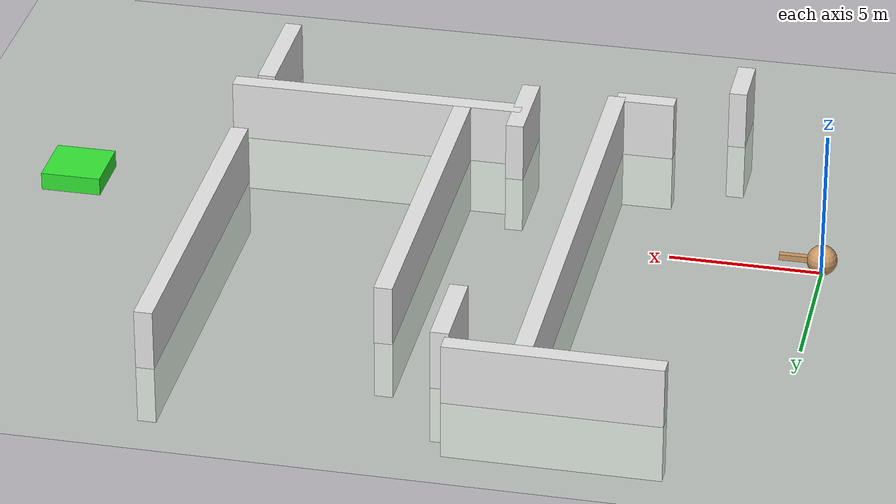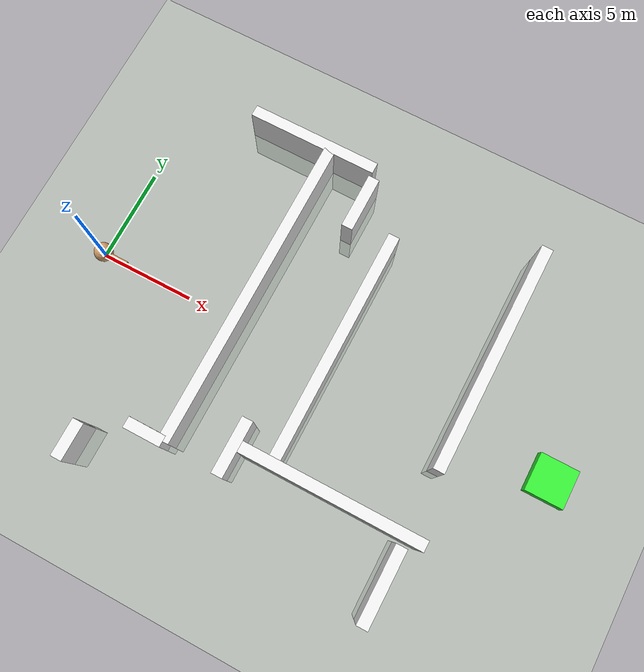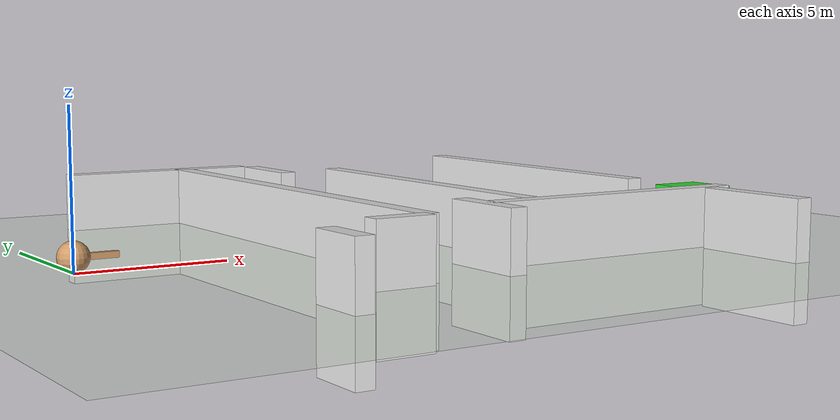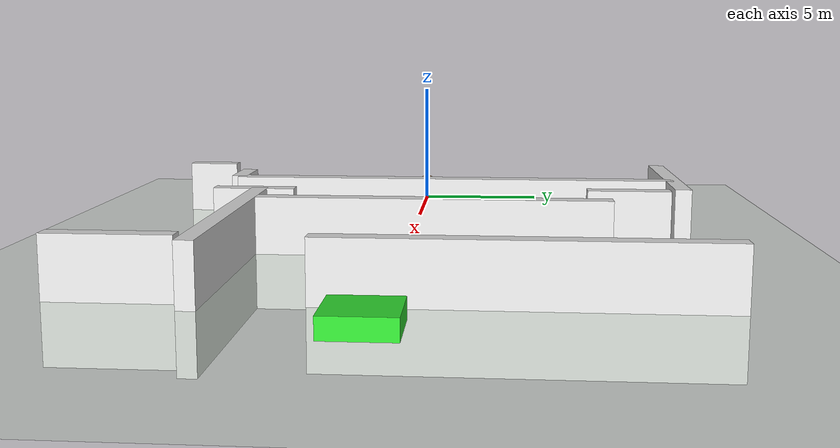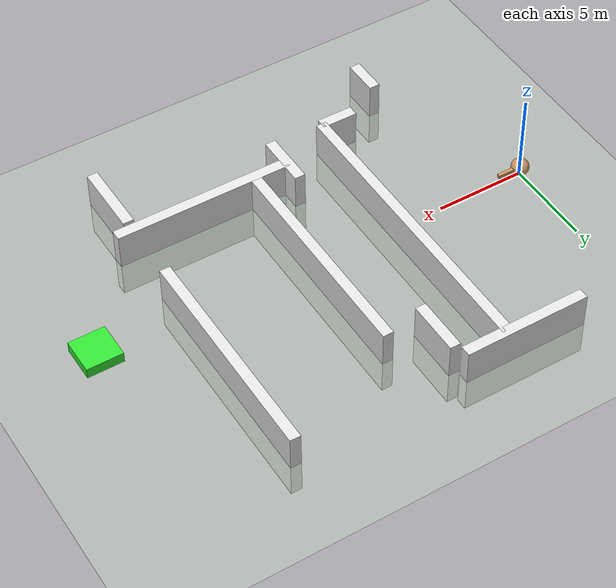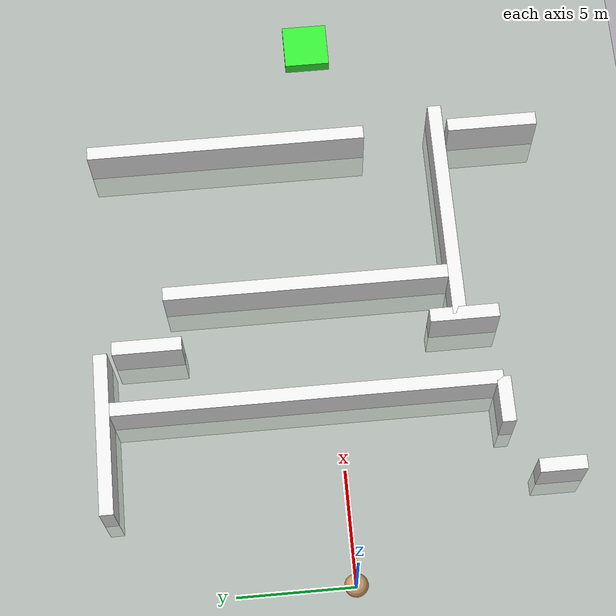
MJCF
<mujoco>
  <compiler inertiafromgeom="true" angle="degree" coordinate="local" />
  <option timestep="0.02" integrator="RK4" />
  <default>
    <joint limited="false" armature="0" damping="0" />
    <geom conaffinity="0" condim="3" margin="0" friction="1 0.5 0.5" rgba="0.8 0.6 0.4 1" density="100" />
  </default>
  <asset>
    <texture type="skybox" builtin="gradient" width="100" height="100" rgb1="1 1 1" rgb2="0 0 0" />
    <texture name="texgeom" type="cube" builtin="flat" mark="cross" width="127" height="1278" rgb1="0.8 0.6 0.4" rgb2="0.8 0.6 0.4" markrgb="1 1 1" random="0.01" />
    <texture name="texplane" type="2d" builtin="checker" rgb1="0 0 0" rgb2="0.8 0.8 0.8" width="100" height="100" />
    <material name='MatPlane' texture="texplane" shininess="1" texrepeat="30 30" specular="1"  reflectance="0.5" />
    <material name='geom' texture="texgeom" texuniform="true" />
  </asset>
  <worldbody>
    <light directional="true" cutoff="100" exponent="1" diffuse="1 1 1" specular=".1 .1 .1" pos="0 0 1.3" dir="-0 0 -1.3" />
    <geom name='floor' material="MatPlane" pos='0 0 0' size='40 40 40' type='plane' conaffinity='1' rgba='0.8 0.9 0.8 1' condim='3' />
    <body name="torso" pos="0 0 0">
      <geom name="pointbody" type="sphere" size="0.5" pos="0 0 0.5" condim="3" />
      <geom name="pointarrow" type="box" size="0.5 0.1 0.1" pos="0.9 0 0.5" condim="3" />
      <joint name='ballx' type='slide' axis='1 0 0' pos='0 0 0' />
      <joint name='bally' type='slide' axis='0 1 0' pos='0 0 0' />
      <joint name='rot' type='hinge' axis='0 0 1' pos='0 0 0' limited="false" />
    </body>
    <geom pos="7 -7 0" conaffinity="1" rgba="0.9 0.9 0.9 1" size="1 0.3 2" type="box" condim="3"/>
    <geom pos="7 10 0" conaffinity="1" rgba="0.9 0.9 0.9 1" size="3.5 0.3 2" type="box" condim="3"/>
    <geom pos="8 1.5 0" conaffinity="1" rgba="0.9 0.9 0.9 1" size="0.3 8.5 2" type="box" condim="3"/>
    <geom pos="4 -9 0" conaffinity="1" rgba="0.9 0.9 0.9 1" size="0.3 1 2" type="box" condim="3"/>

    <!-- second room /-->
    <geom pos="13 1 0" conaffinity="1" rgba="0.9 0.9 0.9 1" size="0.3 6.2 2" type="box" condim="3"/>
    <geom pos="11 -5.7 0" conaffinity="1" rgba="0.9 0.9 0.9 1" size="0.3 1.5 2" type="box" condim="3"/>
    <geom pos="10.7 8 0" conaffinity="1" rgba="0.9 0.9 0.9 1" size="0.3 1.5 2" type="box" condim="3"/>

    <geom pos="16 -5.5 0" conaffinity="1" rgba="0.9 0.9 0.9 1" size="5 0.3 2" type="box" condim="3"/>
    <geom pos="20 4 0" conaffinity="1" rgba="0.9 0.9 0.9 1" size="0.3 6.2 2" type="box" condim="3"/>
    <geom pos="20 -8 0" conaffinity="1" rgba="0.9 0.9 0.9 1" size="0.3 2 2" type="box" condim="3"/>
    <geom pos="25 0 1" conaffinity="0" rgba="0.2 0.9 0.2 1" size="1 1 0.3" type="box"/>
  </worldbody>
  <actuator>
    <!-- Those are just dummy actuators for providing ranges -->
    <motor ctrllimited="true" ctrlrange="-1.0 1.0" joint="ballx" gear="2000"/>
    <motor ctrllimited="true" ctrlrange="-1.0 1.0" joint="bally" gear="2000"/>
  </actuator>
</mujoco>
